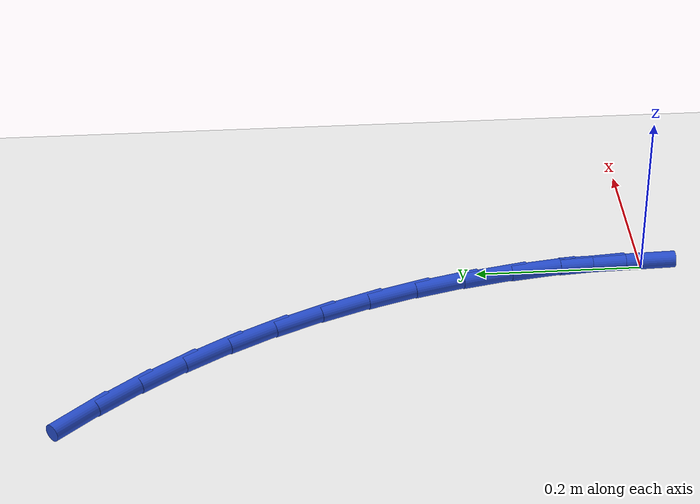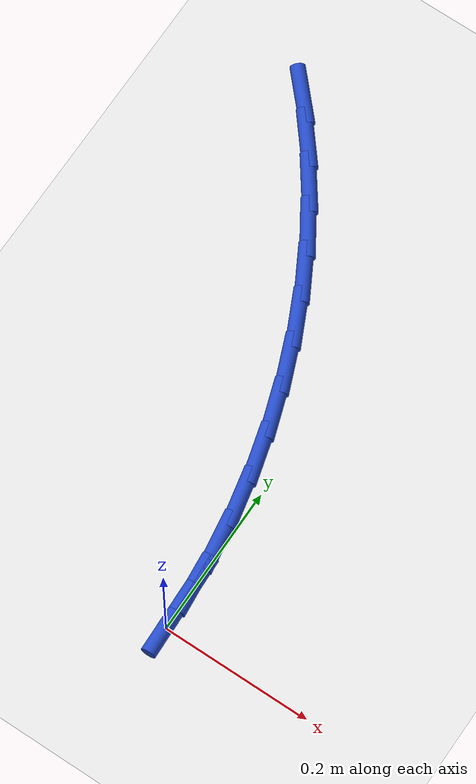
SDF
<sdf version="1.6">
 <world name="default">
  <model name="ground_plane">
   <static>1</static>
   <link name="link">
    <collision name="collision">
     <geometry><plane><normal>0 0 1</normal><size>100 100</size></plane></geometry>
     <surface><friction><ode><mu>100</mu><mu2>50</mu2></ode></friction></surface>
    </collision>
    <visual name="visual">
     <cast_shadows>0</cast_shadows>
     <geometry><plane><normal>0 0 1</normal><size>100 100</size></plane></geometry>
     <material>
      <script><uri>file://media/materials/scripts/gazebo.material</uri><name>Gazebo/WhiteGlow</name></script>
     </material>
    </visual>
   </link>
  </model>
  <model name="line">
   <link name="link_1">
    <pose>-0.0020629401078796753 0.060465689547442886 0.01 0 1.57 -1.4762721936224164</pose>
    <collision name="collision">
     <geometry><cylinder><radius>0.01</radius><length>0.08</length></cylinder></geometry>
    </collision>
    <visual name="visual">
     <material>
      <script><name>Gazebo/Blue</name><uri>file://media/materials/scripts/gazebo.material</uri></script>
     </material>
     <geometry><cylinder><radius>0.01</radius><length>0.08</length></cylinder></geometry>
    </visual>
   </link>
   <link name="link_2">
    <pose>-0.007764964997323302 0.12060940524760116 0.01 0 1.57 -1.4166959937807415</pose>
    <collision name="collision">
     <geometry><cylinder><radius>0.01</radius><length>0.08</length></cylinder></geometry>
    </collision>
    <visual name="visual">
     <material>
      <script><name>Gazebo/Blue</name><uri>file://media/materials/scripts/gazebo.material</uri></script>
     </material>
     <geometry><cylinder><radius>0.01</radius><length>0.08</length></cylinder></geometry>
    </visual>
   </link>
   <link name="link_3">
    <pose>-0.017023983115470594 0.18021739320550018 0.01 0 1.57 -1.3577320879072026</pose>
    <collision name="collision">
     <geometry><cylinder><radius>0.01</radius><length>0.08</length></cylinder></geometry>
    </collision>
    <visual name="visual">
     <material>
      <script><name>Gazebo/Blue</name><uri>file://media/materials/scripts/gazebo.material</uri></script>
     </material>
     <geometry><cylinder><radius>0.01</radius><length>0.08</length></cylinder></geometry>
    </visual>
   </link>
   <link name="link_4">
    <pose>-0.029757902909461266 0.2390758995261653 0.01 0 1.57 -1.2991326779852523</pose>
    <collision name="collision">
     <geometry><cylinder><radius>0.01</radius><length>0.08</length></cylinder></geometry>
    </collision>
    <visual name="visual">
     <material>
      <script><name>Gazebo/Blue</name><uri>file://media/materials/scripts/gazebo.material</uri></script>
     </material>
     <geometry><cylinder><radius>0.01</radius><length>0.08</length></cylinder></geometry>
    </visual>
   </link>
   <link name="link_5">
    <pose>-0.04588463282643504 0.2969711703146219 0.01 0 1.57 -1.2406381176488288</pose>
    <collision name="collision">
     <geometry><cylinder><radius>0.01</radius><length>0.08</length></cylinder></geometry>
    </collision>
    <visual name="visual">
     <material>
      <script><name>Gazebo/Blue</name><uri>file://media/materials/scripts/gazebo.material</uri></script>
     </material>
     <geometry><cylinder><radius>0.01</radius><length>0.08</length></cylinder></geometry>
    </visual>
   </link>
   <link name="link_6">
    <pose>-0.06532208131353158 0.35368945167589527 0.01 0 1.57 -1.1819809730824864</pose>
    <collision name="collision">
     <geometry><cylinder><radius>0.01</radius><length>0.08</length></cylinder></geometry>
    </collision>
    <visual name="visual">
     <material>
      <script><name>Gazebo/Blue</name><uri>file://media/materials/scripts/gazebo.material</uri></script>
     </material>
     <geometry><cylinder><radius>0.01</radius><length>0.08</length></cylinder></geometry>
    </visual>
   </link>
   <link name="link_7">
    <pose>-0.08798815681789063 0.40901698971501066 0.01 0 1.57 -1.1228898718746763</pose>
    <collision name="collision">
     <geometry><cylinder><radius>0.01</radius><length>0.08</length></cylinder></geometry>
    </collision>
    <visual name="visual">
     <material>
      <script><name>Gazebo/Blue</name><uri>file://media/materials/scripts/gazebo.material</uri></script>
     </material>
     <geometry><cylinder><radius>0.01</radius><length>0.08</length></cylinder></geometry>
    </visual>
   </link>
   <link name="link_8">
    <pose>-0.11380076778665191 0.46274003053699364 0.01 0 1.57 -1.0630935244838189</pose>
    <collision name="collision">
     <geometry><cylinder><radius>0.01</radius><length>0.08</length></cylinder></geometry>
    </collision>
    <visual name="visual">
     <material>
      <script><name>Gazebo/Blue</name><uri>file://media/materials/scripts/gazebo.material</uri></script>
     </material>
     <geometry><cylinder><radius>0.01</radius><length>0.08</length></cylinder></geometry>
    </visual>
   </link>
   <link name="link_9">
    <pose>-0.14267782266695517 0.5146448202468695 0.01 0 1.57 -1.0023847157035877</pose>
    <collision name="collision">
     <geometry><cylinder><radius>0.01</radius><length>0.08</length></cylinder></geometry>
    </collision>
    <visual name="visual">
     <material>
      <script><name>Gazebo/Blue</name><uri>file://media/materials/scripts/gazebo.material</uri></script>
     </material>
     <geometry><cylinder><radius>0.01</radius><length>0.08</length></cylinder></geometry>
    </visual>
   </link>
   <link name="link_10">
    <pose>-0.17453588522479094 0.5645220285719409 0.01 0 1.57 -0.942069079176337</pose>
    <collision name="collision">
     <geometry><cylinder><radius>0.01</radius><length>0.08</length></cylinder></geometry>
    </collision>
    <visual name="visual">
     <material>
      <script><name>Gazebo/Blue</name><uri>file://media/materials/scripts/gazebo.material</uri></script>
     </material>
     <geometry><cylinder><radius>0.01</radius><length>0.08</length></cylinder></geometry>
    </visual>
   </link>
   <link name="link_11">
    <pose>-0.20925815598977904 0.6122720808910826 0.01 0 1.57 -0.8838218401816222</pose>
    <collision name="collision">
     <geometry><cylinder><radius>0.01</radius><length>0.08</length></cylinder></geometry>
    </collision>
    <visual name="visual">
     <material>
      <script><name>Gazebo/Blue</name><uri>file://media/materials/scripts/gazebo.material</uri></script>
     </material>
     <geometry><cylinder><radius>0.01</radius><length>0.08</length></cylinder></geometry>
    </visual>
   </link>
   <link name="link_12">
    <pose>-0.24669306029909133 0.6579098031725826 0.01 0 1.57 -0.8278820336470274</pose>
    <collision name="collision">
     <geometry><cylinder><radius>0.01</radius><length>0.08</length></cylinder></geometry>
    </collision>
    <visual name="visual">
     <material>
      <script><name>Gazebo/Blue</name><uri>file://media/materials/scripts/gazebo.material</uri></script>
     </material>
     <geometry><cylinder><radius>0.01</radius><length>0.08</length></cylinder></geometry>
    </visual>
   </link>
   <link name="link_110">
    <pose>-1.3877787807814457e-17 2.7755575615628914e-17 0.01 0 1.57 -1.5363123420443325</pose>
    <collision name="collision">
     <geometry><cylinder><radius>0.01</radius><length>0.08</length></cylinder></geometry>
    </collision>
    <visual name="visual">
     <material>
      <script><name>Gazebo/Blue</name><uri>file://media/materials/scripts/gazebo.material</uri></script>
     </material>
     <geometry><cylinder><radius>0.01</radius><length>0.08</length></cylinder></geometry>
    </visual>
   </link>
   <link name="link_111">
    <pose>-0.0020855324778191672 0.060454316993080126 0.01 0 1.57 -1.5363123420443323</pose>
    <collision name="collision">
     <geometry><cylinder><radius>0.01</radius><length>0.08</length></cylinder></geometry>
    </collision>
    <visual name="visual">
     <material>
      <script><name>Gazebo/Blue</name><uri>file://media/materials/scripts/gazebo.material</uri></script>
     </material>
     <geometry><cylinder><radius>0.01</radius><length>0.08</length></cylinder></geometry>
    </visual>
   </link>
  </model>
 </world>
</sdf>
